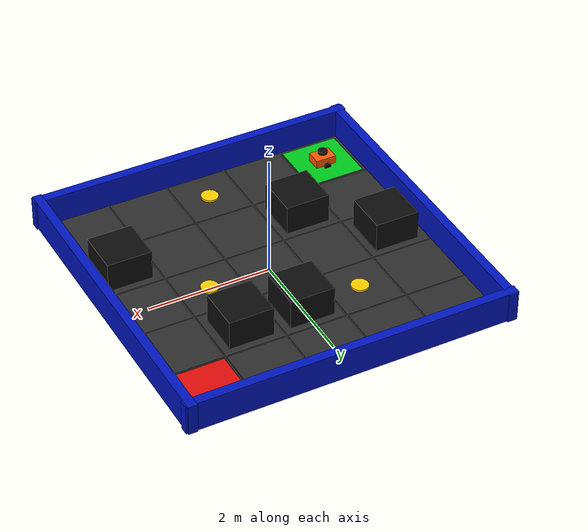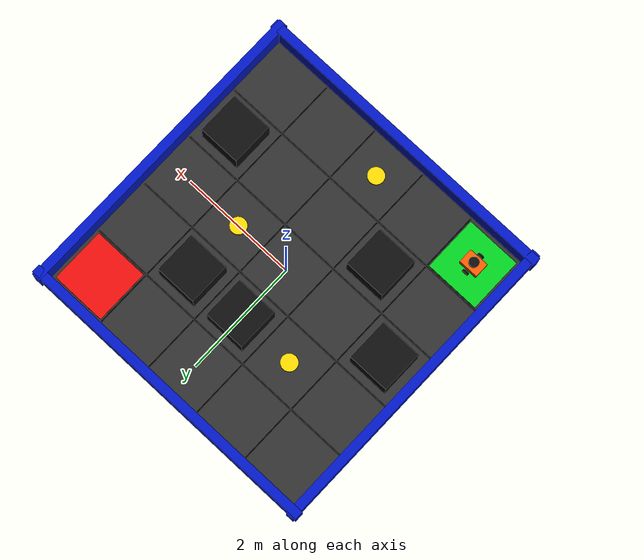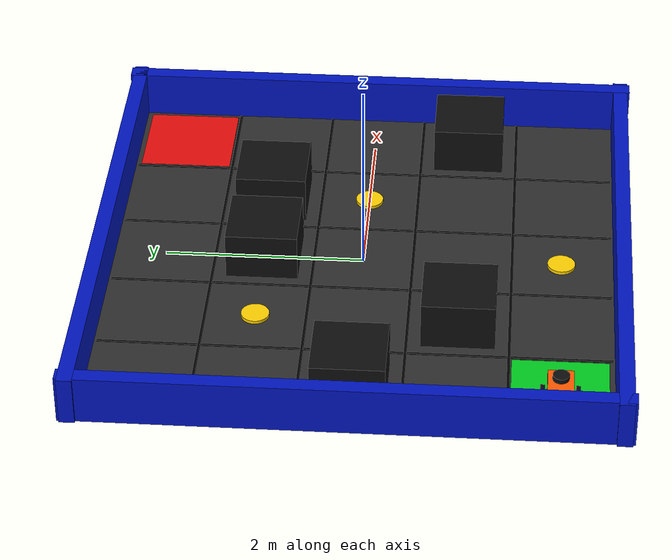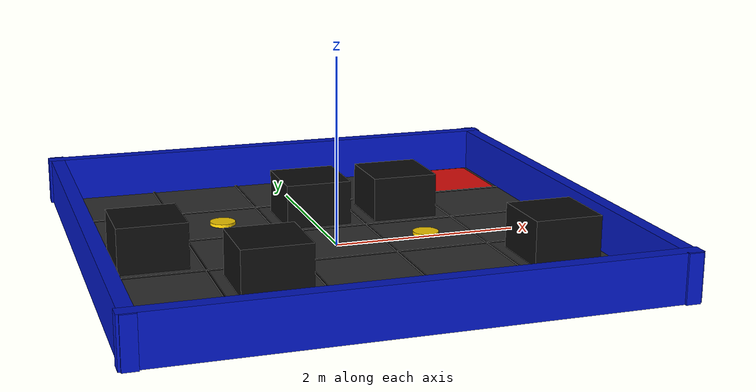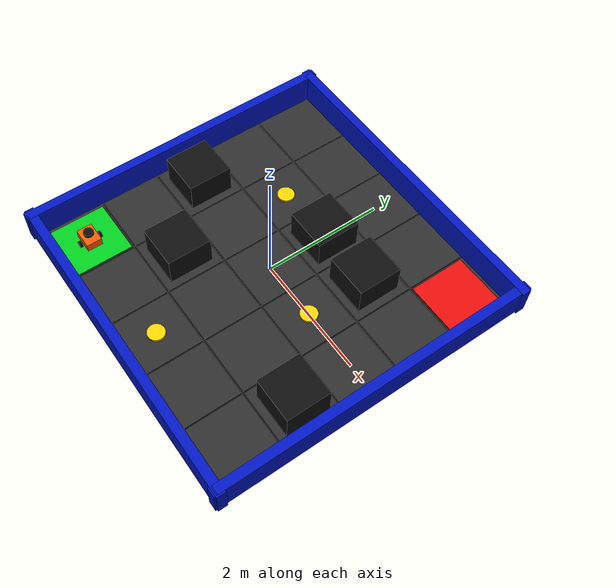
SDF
<?xml version="1.0" ?>
<sdf version="1.6">
  <world name="bonus_grid_world">
    <plugin name="gazebo_ros_init" filename="libgazebo_ros_init.so"/>
    <plugin name="gazebo_ros_factory" filename="libgazebo_ros_factory.so"/>
    <plugin name="gazebo_ros_state" filename="libgazebo_ros_state.so">
      <ros>
        <namespace>/</namespace>
      </ros>
      <update_rate>50.0</update_rate>
    </plugin>

    <gravity>0 0 -9.8</gravity>
    <scene>
      <ambient>0.55 0.55 0.55 1</ambient>
      <background>0.03 0.04 0.06 1</background>
      <shadows>false</shadows>
    </scene>

    <light name="sun" type="directional">
      <pose>0 0 8 0 0 0</pose>
      <diffuse>0.9 0.9 0.85 1</diffuse>
      <specular>0.2 0.2 0.2 1</specular>
      <direction>-0.4 0.2 -1</direction>
    </light>

    <model name="floor">
      <static>true</static>
      <link name="link">
        <collision name="collision">
          <geometry><box><size>5.2 5.2 0.04</size></box></geometry>
        </collision>
        <visual name="visual">
          <geometry><box><size>5.2 5.2 0.04</size></box></geometry>
          <material><ambient>0.18 0.18 0.18 1</ambient><diffuse>0.18 0.18 0.18 1</diffuse></material>
        </visual>
      </link>
    </model>

    <model name="start_green_cell">
      <static>true</static>
      <pose>-2 -2 0.026 0 0 0</pose>
      <link name="link">
        <visual name="visual">
          <geometry><box><size>0.94 0.94 0.012</size></box></geometry>
          <material><ambient>0.0 0.8 0.12 1</ambient><diffuse>0.0 0.8 0.12 1</diffuse></material>
        </visual>
      </link>
    </model>

    <model name="end_red_cell">
      <static>true</static>
      <pose>2 2 0.027 0 0 0</pose>
      <link name="link">
        <visual name="visual">
          <geometry><box><size>0.94 0.94 0.012</size></box></geometry>
          <material><ambient>0.9 0.05 0.04 1</ambient><diffuse>0.9 0.05 0.04 1</diffuse></material>
        </visual>
      </link>
    </model>

    <model name="north_wall"><static>true</static><pose>0 2.6 0.25 0 0 0</pose><link name="link"><collision name="collision"><geometry><box><size>5.4 0.15 0.5</size></box></geometry></collision><visual name="visual"><geometry><box><size>5.4 0.15 0.5</size></box></geometry><material><ambient>0.0 0.08 0.75 1</ambient><diffuse>0.0 0.08 0.75 1</diffuse></material></visual></link></model>
    <model name="south_wall"><static>true</static><pose>0 -2.6 0.25 0 0 0</pose><link name="link"><collision name="collision"><geometry><box><size>5.4 0.15 0.5</size></box></geometry></collision><visual name="visual"><geometry><box><size>5.4 0.15 0.5</size></box></geometry><material><ambient>0.0 0.08 0.75 1</ambient><diffuse>0.0 0.08 0.75 1</diffuse></material></visual></link></model>
    <model name="east_wall"><static>true</static><pose>2.6 0 0.25 0 0 0</pose><link name="link"><collision name="collision"><geometry><box><size>0.15 5.4 0.5</size></box></geometry></collision><visual name="visual"><geometry><box><size>0.15 5.4 0.5</size></box></geometry><material><ambient>0.0 0.08 0.75 1</ambient><diffuse>0.0 0.08 0.75 1</diffuse></material></visual></link></model>
    <model name="west_wall"><static>true</static><pose>-2.6 0 0.25 0 0 0</pose><link name="link"><collision name="collision"><geometry><box><size>0.15 5.4 0.5</size></box></geometry></collision><visual name="visual"><geometry><box><size>0.15 5.4 0.5</size></box></geometry><material><ambient>0.0 0.08 0.75 1</ambient><diffuse>0.0 0.08 0.75 1</diffuse></material></visual></link></model>

    <model name="grid_x_neg2"><static>true</static><pose>-1.5 0 0.035 0 0 0</pose><link name="link"><visual name="visual"><geometry><box><size>0.025 5.0 0.01</size></box></geometry><material><ambient>0 0 0 1</ambient><diffuse>0 0 0 1</diffuse></material></visual></link></model>
    <model name="grid_x_neg1"><static>true</static><pose>-0.5 0 0.035 0 0 0</pose><link name="link"><visual name="visual"><geometry><box><size>0.025 5.0 0.01</size></box></geometry><material><ambient>0 0 0 1</ambient><diffuse>0 0 0 1</diffuse></material></visual></link></model>
    <model name="grid_x_pos1"><static>true</static><pose>0.5 0 0.035 0 0 0</pose><link name="link"><visual name="visual"><geometry><box><size>0.025 5.0 0.01</size></box></geometry><material><ambient>0 0 0 1</ambient><diffuse>0 0 0 1</diffuse></material></visual></link></model>
    <model name="grid_x_pos2"><static>true</static><pose>1.5 0 0.035 0 0 0</pose><link name="link"><visual name="visual"><geometry><box><size>0.025 5.0 0.01</size></box></geometry><material><ambient>0 0 0 1</ambient><diffuse>0 0 0 1</diffuse></material></visual></link></model>
    <model name="grid_y_neg2"><static>true</static><pose>0 -1.5 0.036 0 0 0</pose><link name="link"><visual name="visual"><geometry><box><size>5.0 0.025 0.01</size></box></geometry><material><ambient>0 0 0 1</ambient><diffuse>0 0 0 1</diffuse></material></visual></link></model>
    <model name="grid_y_neg1"><static>true</static><pose>0 -0.5 0.036 0 0 0</pose><link name="link"><visual name="visual"><geometry><box><size>5.0 0.025 0.01</size></box></geometry><material><ambient>0 0 0 1</ambient><diffuse>0 0 0 1</diffuse></material></visual></link></model>
    <model name="grid_y_pos1"><static>true</static><pose>0 0.5 0.036 0 0 0</pose><link name="link"><visual name="visual"><geometry><box><size>5.0 0.025 0.01</size></box></geometry><material><ambient>0 0 0 1</ambient><diffuse>0 0 0 1</diffuse></material></visual></link></model>
    <model name="grid_y_pos2"><static>true</static><pose>0 1.5 0.036 0 0 0</pose><link name="link"><visual name="visual"><geometry><box><size>5.0 0.025 0.01</size></box></geometry><material><ambient>0 0 0 1</ambient><diffuse>0 0 0 1</diffuse></material></visual></link></model>

    <model name="obstacle_1"><static>true</static><pose>-2 0 0.25 0 0 0</pose><link name="link"><collision name="collision"><geometry><box><size>0.72 0.72 0.5</size></box></geometry></collision><visual name="visual"><geometry><box><size>0.72 0.72 0.5</size></box></geometry><material><ambient>0.05 0.05 0.05 1</ambient><diffuse>0.05 0.05 0.05 1</diffuse></material></visual></link></model>
    <model name="obstacle_2"><static>true</static><pose>-1 -1 0.25 0 0 0</pose><link name="link"><collision name="collision"><geometry><box><size>0.72 0.72 0.5</size></box></geometry></collision><visual name="visual"><geometry><box><size>0.72 0.72 0.5</size></box></geometry><material><ambient>0.05 0.05 0.05 1</ambient><diffuse>0.05 0.05 0.05 1</diffuse></material></visual></link></model>
    <model name="obstacle_3"><static>true</static><pose>0 1 0.25 0 0 0</pose><link name="link"><collision name="collision"><geometry><box><size>0.72 0.72 0.5</size></box></geometry></collision><visual name="visual"><geometry><box><size>0.72 0.72 0.5</size></box></geometry><material><ambient>0.05 0.05 0.05 1</ambient><diffuse>0.05 0.05 0.05 1</diffuse></material></visual></link></model>
    <model name="obstacle_4"><static>true</static><pose>1 1 0.25 0 0 0</pose><link name="link"><collision name="collision"><geometry><box><size>0.72 0.72 0.5</size></box></geometry></collision><visual name="visual"><geometry><box><size>0.72 0.72 0.5</size></box></geometry><material><ambient>0.05 0.05 0.05 1</ambient><diffuse>0.05 0.05 0.05 1</diffuse></material></visual></link></model>
    <model name="obstacle_5"><static>false</static><pose>2 -1 0.25 0 0 0</pose><link name="link"><gravity>false</gravity><collision name="collision"><geometry><box><size>0.72 0.72 0.5</size></box></geometry></collision><visual name="visual"><geometry><box><size>0.72 0.72 0.5</size></box></geometry><material><ambient>0.05 0.05 0.05 1</ambient><diffuse>0.05 0.05 0.05 1</diffuse></material></visual></link></model>

    <model name="bonus_1"><static>false</static><pose>0 -2 0.045 0 0 0</pose><link name="link"><gravity>false</gravity><visual name="visual"><geometry><cylinder><radius>0.14</radius><length>0.035</length></cylinder></geometry><material><ambient>1 0.82 0.0 1</ambient><diffuse>1 0.82 0.0 1</diffuse></material></visual></link></model>
    <model name="bonus_2"><static>false</static><pose>-1 1 0.045 0 0 0</pose><link name="link"><gravity>false</gravity><visual name="visual"><geometry><cylinder><radius>0.14</radius><length>0.035</length></cylinder></geometry><material><ambient>1 0.82 0.0 1</ambient><diffuse>1 0.82 0.0 1</diffuse></material></visual></link></model>
    <model name="bonus_3"><static>false</static><pose>1 0 0.045 0 0 0</pose><link name="link"><gravity>false</gravity><visual name="visual"><geometry><cylinder><radius>0.14</radius><length>0.035</length></cylinder></geometry><material><ambient>1 0.82 0.0 1</ambient><diffuse>1 0.82 0.0 1</diffuse></material></visual></link></model>

    <model name="collector_bot">
      <pose>-2 -2 0.09 0 0 0</pose>
      <link name="base_link">
        <inertial><mass>1.0</mass><inertia><ixx>0.03</ixx><iyy>0.03</iyy><izz>0.03</izz></inertia></inertial>
        <collision name="base_collision"><geometry><box><size>0.34 0.25 0.16</size></box></geometry></collision>
        <visual name="base_visual"><geometry><box><size>0.34 0.25 0.16</size></box></geometry><material><ambient>1.0 0.35 0.0 1</ambient><diffuse>1.0 0.35 0.0 1</diffuse></material></visual>
      </link>
      <link name="left_wheel">
        <pose>0 0.17 -0.035 1.5707 0 0</pose>
        <inertial><mass>0.08</mass><inertia><ixx>0.001</ixx><iyy>0.001</iyy><izz>0.001</izz></inertia></inertial>
        <collision name="collision"><geometry><cylinder><radius>0.055</radius><length>0.04</length></cylinder></geometry></collision>
        <visual name="visual"><geometry><cylinder><radius>0.055</radius><length>0.04</length></cylinder></geometry><material><ambient>0.02 0.02 0.02 1</ambient><diffuse>0.02 0.02 0.02 1</diffuse></material></visual>
      </link>
      <link name="right_wheel">
        <pose>0 -0.17 -0.035 1.5707 0 0</pose>
        <inertial><mass>0.08</mass><inertia><ixx>0.001</ixx><iyy>0.001</iyy><izz>0.001</izz></inertia></inertial>
        <collision name="collision"><geometry><cylinder><radius>0.055</radius><length>0.04</length></cylinder></geometry></collision>
        <visual name="visual"><geometry><cylinder><radius>0.055</radius><length>0.04</length></cylinder></geometry><material><ambient>0.02 0.02 0.02 1</ambient><diffuse>0.02 0.02 0.02 1</diffuse></material></visual>
      </link>
      <link name="lidar_link">
        <pose>0 0 0.14 0 0 0</pose>
        <visual name="visual"><geometry><cylinder><radius>0.08</radius><length>0.05</length></cylinder></geometry><material><ambient>0.05 0.05 0.05 1</ambient><diffuse>0.05 0.05 0.05 1</diffuse></material></visual>
        <sensor name="lidar" type="ray">
          <always_on>true</always_on>
          <visualize>true</visualize>
          <update_rate>10</update_rate>
          <ray>
            <scan><horizontal><samples>360</samples><resolution>1</resolution><min_angle>-3.14159</min_angle><max_angle>3.14159</max_angle></horizontal></scan>
            <range><min>0.08</min><max>6.0</max><resolution>0.01</resolution></range>
          </ray>
          <plugin name="gazebo_ros_lidar" filename="libgazebo_ros_ray_sensor.so">
            <ros><remapping>~/out:=scan</remapping></ros>
            <output_type>sensor_msgs/LaserScan</output_type>
            <frame_name>lidar_link</frame_name>
          </plugin>
        </sensor>
      </link>
      <joint name="left_wheel_joint" type="revolute">
        <parent>base_link</parent><child>left_wheel</child>
        <axis><xyz>0 1 0</xyz><limit><lower>-1e16</lower><upper>1e16</upper></limit></axis>
      </joint>
      <joint name="right_wheel_joint" type="revolute">
        <parent>base_link</parent><child>right_wheel</child>
        <axis><xyz>0 1 0</xyz><limit><lower>-1e16</lower><upper>1e16</upper></limit></axis>
      </joint>
      <joint name="lidar_joint" type="fixed">
        <parent>base_link</parent><child>lidar_link</child>
      </joint>
      <plugin name="diff_drive" filename="libgazebo_ros_diff_drive.so">
        <ros><remapping>cmd_vel:=cmd_vel</remapping><remapping>odom:=odom</remapping></ros>
        <left_joint>left_wheel_joint</left_joint>
        <right_joint>right_wheel_joint</right_joint>
        <wheel_separation>0.34</wheel_separation>
        <wheel_diameter>0.11</wheel_diameter>
        <max_wheel_torque>20</max_wheel_torque>
        <max_wheel_acceleration>1.0</max_wheel_acceleration>
        <publish_odom>true</publish_odom>
        <publish_odom_tf>true</publish_odom_tf>
        <publish_wheel_tf>false</publish_wheel_tf>
        <odometry_frame>odom</odometry_frame>
        <robot_base_frame>base_link</robot_base_frame>
      </plugin>
    </model>
  </world>
</sdf>
